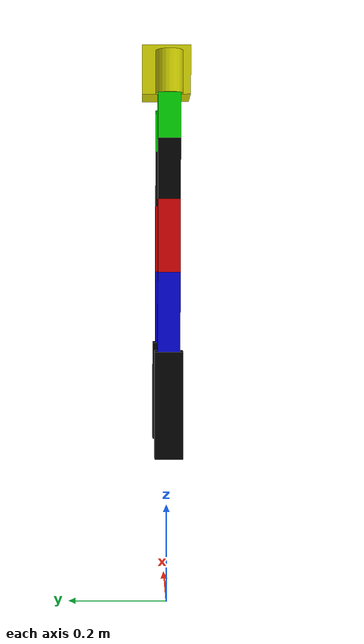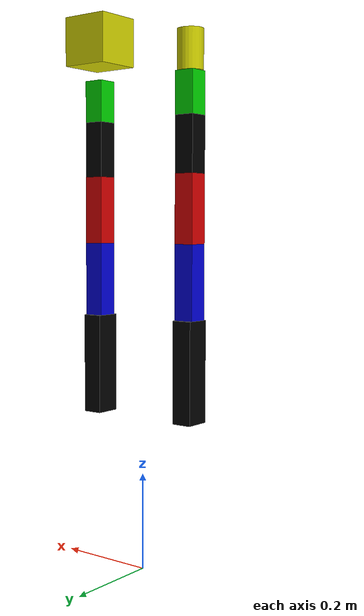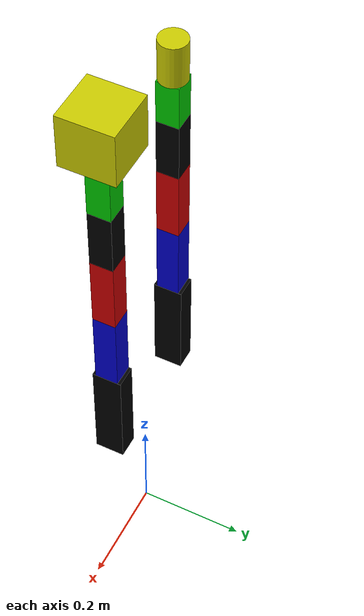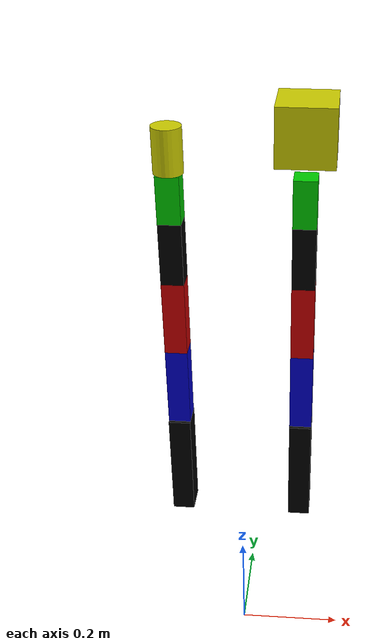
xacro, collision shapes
<?xml version="1.0"?>
<robot name="arm" xmlns:xacro="http://ros.org/wiki/xacro">

<xacro:property name="namespace" value="$(arg namespace)" />

<xacro:include filename="$(find rotors_description)/urdf/component_snippets.xacro" />

<xacro:arm_actuator_plugin_macro namespace="${namespace}"/>

<material name="blue">
    <color rgba="0 0 0.8 1"/>
</material>

<material name="green">
    <color rgba="0 0.8 0 1"/>
</material>

<material name="yellow">
    <color rgba="0.8 0.8 0 1"/>
</material>

<material name="black">
    <color rgba="0 0 0 1"/>
</material>

<material name="red">
    <color rgba="0.8 0 0 1"/>
</material>

<link name="world">
	<origin rpy="0 0 0" xyz="0 0 0"/>
</link>

<joint name="fixed_joint" type="fixed">
	<parent link="world"/>
	<child link="fixed_frame"/>
	<origin rpy="0 3.1416 0" xyz="0 0 1.1"/>
</joint>

<link name="fixed_frame">
	<origin rpy="0 0 0" xyz="0 0 0"/>
</link>

<joint name="fixed_joint_right" type="fixed">
	<parent link="fixed_frame"/>
	<child link="base_link_right"/>
	<origin rpy="0 0 0" xyz="0.11475 0 0.009"/>
</joint>

<link name="base_link_right">
	<visual>
		<origin rpy="0 0 0" xyz="0 0 0"/>
		<geometry>
		<mesh filename="package://rotors_description/meshes/arm/base_link.stl" scale="0.001 0.001 0.001"/>
		</geometry>
		<material name = "yellow"/>
	</visual>

    <collision>
      <origin xyz="0 0 39.875e-3" rpy="0 0 0"/>
      <geometry>
        <cylinder radius="26.05e-3" length="79.75e-3"/>
      </geometry>
    </collision>

    <inertial>
      <origin xyz="-2.2068363e-3 -9.1832072e-6 3.1955704e-3" rpy="-0.1729 0 1.5708"/>
      <mass value="0.396"/>
      <inertia
        ixx="3.1455842e-4" ixy="0.0" ixz="0.0"
        iyy="8.1358422e-4" iyz="0.0"
        izz="9.0317049e-4"/>
    </inertial>
</link>

 <joint name="Joint_shoulder_right" type="revolute">
 	<axis xyz="0 0 1"/>
 	<limit effort="1000.0" lower="-3.14" upper="+3.14" velocity="1"/>
	<parent link="base_link_right"/>
	<child link="Link_shoulder_right"/>
	<origin xyz="0 0 79.75e-3"/>
</joint>

<link name="Link_shoulder_right">
	<visual>
		<origin rpy="0 0 0" xyz="0 0 0"/>
		<geometry>
		<mesh filename="package://rotors_description/meshes/arm/j0.stl" scale="0.001 0.001 0.001"/>
		</geometry>
		<material name = "green"/>
	</visual>

    <collision>
      <origin xyz="0 0 42.572e-3" rpy="0 0 0"/>
      <geometry>
        <box size="41e-3 42.5e-3 85.144e-3"/>
      </geometry>
    </collision>

    <inertial>
      <origin xyz="-3.0707866e-6 9.0724801e-5 3.3368422e-3" rpy="1.5790 -0.0021 1.7506"/>
      <mass value="1.586"/>
      <inertia
        ixx="9.7058009e-4" ixy="0.0" ixz="0.0"
        iyy="5.8598889e-3" iyz="0.0"
        izz="6.2755829e-3"/>
    </inertial>
</link>

<joint name="fake_J1_A_right" type="revolute">
	<axis xyz="1 0 0"/>
 	<limit effort="1000.0" lower="0" upper="0.785" velocity="1"/>
	<parent link="Link_shoulder_right"/>
	<child link="fake_link_J1_right"/>
	<origin xyz="0 0 61.144e-3"/>
</joint>

<link name="fake_link_J1_right">
<!-- for a box: ixx = 0.083 * mass * (y*y + z*z) -->
<!-- for a box: ixy = 0 -->
<!-- for a box: ixz = 0 -->
<!-- for a box: iyy = 0.083 * mass * (x*x + z*z) -->
<!-- for a box: iyz = 0 -->
<!-- for a box: izz = 0.083 * mass * (x*x + y*y) -->
    <inertial>
      <origin xyz="0 0 0.024" rpy="0 0 0"/>
      <mass value="0.001"/>
      <inertia
        ixx="2e-7" ixy="0.0" ixz="0.0"
        iyy="2e-7" iyz="0.0"
        izz="2e-7"/>
    </inertial>
</link>

 <joint name="fake_J1_B_right" type="revolute">
 	<axis xyz="1 0 0"/>
 	<limit effort="1000.0" lower="0" upper="0.785" velocity="1"/>
	<parent link="fake_link_J1_right"/>
	<child link="Link_one_right"/>
	<origin xyz="0 0 0.048"/>
</joint>

<link name="Link_one_right">
	<visual>
		<origin rpy="0 0 0" xyz="0 0.0 0"/>
		<geometry>
		<mesh filename="package://rotors_description/meshes/arm/j1.stl" scale="0.001 0.001 0.001"/>
		</geometry>
		<material name = "black"/>
	</visual>

    <collision>
      <origin xyz="0 0 32.5e-3" rpy="0 0 0"/>
      <geometry>
        <box size="41e-3 42.5e-3 113e-3"/>
      </geometry>
    </collision>

    <inertial>
      <origin xyz="3.9623762e-4 5.2904518e-4 3.2046387e-2" rpy="-0.0193 -1.4555 -1.4511"/>
      <mass value="0.139"/>
      <inertia
        ixx="5.7544276e-5" ixy="0.0" ixz="0.0"
        iyy="1.7117076e-4" iyz="0.0"
        izz="1.7370141e-4"/>
    </inertial>
</link>

<joint name="fake_J2_A_right" type="revolute">
	<axis xyz="1 0 0"/>
 	<limit effort="1000.0" lower="-0.785" upper="0" velocity="1"/>
	<parent link="Link_one_right"/>
	<child link="fake_link_J2_right"/>
	<origin xyz="0 0 0.065"/>
</joint>

<link name="fake_link_J2_right">
    <inertial>
      <origin xyz="0 0 0.024" rpy="0 0 0"/>
      <mass value="0.001"/>
      <inertia
        ixx="2e-7" ixy="0.0" ixz="0.0"
        iyy="2e-7" iyz="0.0"
        izz="2e-7"/>
    </inertial>
</link>

<joint name="fake_J2_B_right" type="revolute">
	<axis xyz="1 0 0"/>
 	<limit effort="1000.0" lower="-0.785" upper="0" velocity="1"/>
	<parent link="fake_link_J2_right"/>
	<child link="Link_two_right"/>
	<origin xyz="0 0 0.048"/>
</joint>

<link name="Link_two_right">
	<visual>
		<origin rpy="0 0 0" xyz="0 0 0"/>
		<geometry>
		<mesh filename="package://rotors_description/meshes/arm/j2.stl" scale="0.001 0.001 0.001"/>
		</geometry>
		<material name = "red"/>
	</visual>

    <collision>
      <origin xyz="0 0 45e-3" rpy="0 0 0"/>
      <geometry>
        <box size="41e-3 42.5e-3 138e-3"/>
      </geometry>
    </collision>

    <inertial>
      <origin xyz="5.1358654e-4 1.4848633e-3 4.0707125e-2" rpy="3.0686 -1.5089 1.6549"/>
      <mass value="0.154"/>
      <inertia
        ixx="9.2363919e-5" ixy="0.0" ixz="0.0"
        iyy="2.7365867e-4" iyz="0.0"
        izz="2.7990892e-4"/>
    </inertial>
</link>

<joint name="fake_J3_A_right" type="revolute">
	<axis xyz="1 0 0"/>
 	<limit effort="1000.0" lower="0" upper="0.785" velocity="1"/>
	<parent link="Link_two_right"/>
	<child link="fake_link_J3_right"/>
	<origin xyz="0 0 0.090"/>
</joint>

<link name="fake_link_J3_right">
	<inertial>
      <origin xyz="0 0 0.024" rpy="0 0 0"/>
      <mass value="0.001"/>
      <inertia
        ixx="2e-7" ixy="0.0" ixz="0.0"
        iyy="2e-7" iyz="0.0"
        izz="2e-7"/>
    </inertial>
</link>

<joint name="fake_J3_B_right" type="revolute">
	<axis xyz="1 0 0"/>
 	<limit effort="1000.0" lower="0" upper="0.785" velocity="1"/>
	<parent link="fake_link_J3_right"/>
	<child link="Link_three_right"/>
	<origin xyz="0 0 0.048"/>
</joint>

<link name="Link_three_right">
	<visual>
		<origin rpy="0 0 0" xyz="0 0 0"/>
		<geometry>
		<mesh filename="package://rotors_description/meshes/arm/j3.stl" scale="0.001 0.001 0.001"/>
		</geometry>
		<material name = "blue"/>
	</visual>

    <collision>
      <origin xyz="0 0 51.1e-3" rpy="0 0 0"/>
      <geometry>
        <box size="41e-3 42.5e-3 150.2e-3"/>
      </geometry>
    </collision>

    <inertial>
      <origin xyz="1.0689991e-4 4.5539723e-3 5.6348105e-2" rpy="0.0503 -1.4936 -1.6299"/>
      <mass value="0.207"/>
      <inertia
        ixx="8.4188171e-5" ixy="0.0" ixz="0.0"
        iyy="3.4408597e-4" iyz="0.0"
        izz="3.6490830e-4"/>
    </inertial>
</link>

<joint name="Joint_wrist_right" type="revolute">
	<axis xyz="0 0 1"/>
 	<limit effort="1000.0" lower="-3.14" upper="3.14" velocity="1"/>
	<parent link="Link_three_right"/>
	<child link="Link_hand_right"/>
	<origin xyz="0 0 0.1262"/>
</joint>

<link name="Link_hand_right">
	<visual>
		<origin rpy="0 0 0 " xyz="0 0 0"/>
		<geometry>
    <mesh filename="package://rotors_description/meshes/arm/hand_right.stl" scale="0.001 0.001 0.001"/>
    </geometry>
		<material name = "black"/>
	</visual>

    <collision>
      <origin xyz="0 0 102.556e-3" rpy="0 0 0"/>
      <geometry>
        <box size="41e-3 54e-3 205.122e-3"/>
      </geometry>
    </collision>

    <inertial>
      <origin xyz="-5.1914952e-3 9.4338844e-4 8.4791871e-2" rpy="2.7807 -1.4896 1.8174"/>
      <mass value="0.505"/>
      <inertia
        ixx="3.2734333e-4" ixy="0.0" ixz="0.0"
        iyy="1.1324016e-3" iyz="0.0"
        izz="1.3591446e-3"/>
    </inertial>
</link>

<joint name="fixed_joint_left" type="fixed">
	<parent link="fixed_frame"/>
	<child link="base_link_left"/>
	<origin rpy="0 0 0" xyz="-0.11475 0 0.009"/>
</joint>

<link name="base_link_left">
	<visual>
		<origin rpy="0 0 0" xyz="0 0 0"/>
		<geometry>
		<mesh filename="package://rotors_description/meshes/arm/base_link.stl" scale="0.001 0.001 0.001"/>
		</geometry>
		<material name = "yellow"/>
	</visual>

    <collision>
      <origin xyz="0 0 0" rpy="0 0 0"/>
      <geometry>
        <box size="0.1 0.1 0.1"/>
      </geometry>
    </collision>

    <inertial>
      <origin xyz="-2.2068363e-3 -9.1832072e-6 3.1955704e-3" rpy="-0.1729 0 1.5708"/>
      <mass value="0.396"/>
      <inertia
        ixx="3.1455842e-4" ixy="0.0" ixz="0.0"
        iyy="8.1358422e-4" iyz="0.0"
        izz="9.0317049e-4"/>
    </inertial>
</link>

 <joint name="Joint_shoulder_left" type="revolute">
 	<axis xyz="0 0 1"/>
 	<limit effort="1000.0" lower="-3.14" upper="+3.14" velocity="1"/>
	<parent link="base_link_left"/>
	<child link="Link_shoulder_left"/>
	<origin xyz="0 0 79.75e-3"/>
</joint>

<link name="Link_shoulder_left">
	<visual>
		<origin rpy="0 0 0" xyz="0 0 0"/>
		<geometry>
		<mesh filename="package://rotors_description/meshes/arm/j0.stl" scale="0.001 0.001 0.001"/>
		</geometry>
		<material name = "green"/>
	</visual>

    <collision>
      <origin xyz="0 0 42.572e-3" rpy="0 0 0"/>
      <geometry>
        <box size="41e-3 42.5e-3 85.144e-3"/>
      </geometry>
    </collision>

    <inertial>
      <origin xyz="-3.0707866e-6 9.0724801e-5 3.3368422e-3" rpy="1.5790 -0.0021 1.7506"/>
      <mass value="1.586"/>
      <inertia
        ixx="9.7058009e-4" ixy="0.0" ixz="0.0"
        iyy="5.8598889e-3" iyz="0.0"
        izz="6.2755829e-3"/>
    </inertial>
</link>

<joint name="fake_J1_A_left" type="revolute">
	<axis xyz="1 0 0"/>
 	<limit effort="1000.0" lower="0" upper="0.785" velocity="1"/>
	<parent link="Link_shoulder_left"/>
	<child link="fake_link_J1_left"/>
	<origin xyz="0 0 61.144e-3"/>
</joint>

<link name="fake_link_J1_left">
<!-- for a box: ixx = 0.083 * mass * (y*y + z*z) -->
<!-- for a box: ixy = 0 -->
<!-- for a box: ixz = 0 -->
<!-- for a box: iyy = 0.083 * mass * (x*x + z*z) -->
<!-- for a box: iyz = 0 -->
<!-- for a box: izz = 0.083 * mass * (x*x + y*y) -->
    <inertial>
      <origin xyz="0 0 0.024" rpy="0 0 0"/>
      <mass value="0.001"/>
      <inertia
        ixx="2e-7" ixy="0.0" ixz="0.0"
        iyy="2e-7" iyz="0.0"
        izz="2e-7"/>
    </inertial>
</link>

 <joint name="fake_J1_B_left" type="revolute">
 	<axis xyz="1 0 0"/>
 	<limit effort="1000.0" lower="0" upper="0.785" velocity="1"/>
	<parent link="fake_link_J1_left"/>
	<child link="Link_one_left"/>
	<origin xyz="0 0 0.048"/>
</joint>

<link name="Link_one_left">
	<visual>
		<origin rpy="0 0 0" xyz="0 0 0"/>
		<geometry>
		<mesh filename="package://rotors_description/meshes/arm/j1.stl" scale="0.001 0.001 0.001"/>
		</geometry>
		<material name = "black"/>
	</visual>

    <collision>
      <origin xyz="0 0 32.5e-3" rpy="0 0 0"/>
      <geometry>
        <box size="41e-3 42.5e-3 113e-3"/>
      </geometry>
    </collision>

    <inertial>
      <origin xyz="3.9623762e-4 5.2904518e-4 3.2046387e-2" rpy="-0.0193 -1.4555 -1.4511"/>
      <mass value="0.139"/>
      <inertia
        ixx="5.7544276e-5" ixy="0.0" ixz="0.0"
        iyy="1.7117076e-4" iyz="0.0"
        izz="1.7370141e-4"/>
    </inertial>
</link>

<joint name="fake_J2_A_left" type="revolute">
	<axis xyz="1 0 0"/>
 	<limit effort="1000.0" lower="-0.785" upper="0" velocity="1"/>
	<parent link="Link_one_left"/>
	<child link="fake_link_J2_left"/>
	<origin xyz="0 0 0.065"/>
</joint>

<link name="fake_link_J2_left">
	    <inertial>
      <origin xyz="0 0 0.024" rpy="0 0 0"/>
      <mass value="0.001"/>
      <inertia
        ixx="2e-7" ixy="0.0" ixz="0.0"
        iyy="2e-7" iyz="0.0"
        izz="2e-7"/>
    </inertial>
</link>

<joint name="fake_J2_B_left" type="revolute">
	<axis xyz="1 0 0"/>
 	<limit effort="1000.0" lower="-0.785" upper="0" velocity="1"/>
	<parent link="fake_link_J2_left"/>
	<child link="Link_two_left"/>
	<origin xyz="0 0 0.048"/>
</joint>

<link name="Link_two_left">
	<visual>
		<origin rpy="0 0 0" xyz="0 0 0"/>
		<geometry>
		<mesh filename="package://rotors_description/meshes/arm/j2.stl" scale="0.001 0.001 0.001"/>
		</geometry>
		<material name = "red"/>
	</visual>

    <collision>
      <origin xyz="0 0 45e-3" rpy="0 0 0"/>
      <geometry>
        <box size="41e-3 42.5e-3 138e-3"/>
      </geometry>
    </collision>

    <inertial>
      <origin xyz="5.1358654e-4 1.4848633e-3 4.0707125e-2" rpy="3.0686 -1.5089 1.6549"/>
      <mass value="0.154"/>
      <inertia
        ixx="9.2363919e-5" ixy="0.0" ixz="0.0"
        iyy="2.7365867e-4" iyz="0.0"
        izz="2.7990892e-4"/>
    </inertial>
</link>

<joint name="fake_J3_A_left" type="revolute">
	<axis xyz="1 0 0"/>
 	<limit effort="1000.0" lower="0" upper="0.785" velocity="1"/>
	<parent link="Link_two_left"/>
	<child link="fake_link_J3_left"/>
	<origin xyz="0 0 0.090"/>
</joint>

<link name="fake_link_J3_left">
	<inertial>
      <origin xyz="0 0 0.024" rpy="0 0 0"/>
      <mass value="0.001"/>
      <inertia
        ixx="2e-7" ixy="0.0" ixz="0.0"
        iyy="2e-7" iyz="0.0"
        izz="2e-7"/>
    </inertial>
</link>

<joint name="fake_J3_B_left" type="revolute">
	<axis xyz="1 0 0"/>
 	<limit effort="1000.0" lower="0" upper="0.785" velocity="1"/>
	<parent link="fake_link_J3_left"/>
	<child link="Link_three_left"/>
	<origin xyz="0 0 0.048"/>
</joint>

<link name="Link_three_left">
	<visual>
		<origin rpy="0 0 0" xyz="0 0 0"/>
		<geometry>
		<mesh filename="package://rotors_description/meshes/arm/j3.stl" scale="0.001 0.001 0.001"/>
		</geometry>
		<material name = "blue"/>
	</visual>

    <collision>
      <origin xyz="0 0 51.1e-3" rpy="0 0 0"/>
      <geometry>
        <box size="41e-3 42.5e-3 150.2e-3"/>
      </geometry>
    </collision>

    <inertial>
      <origin xyz="1.0689991e-4 4.5539723e-3 5.6348105e-2" rpy="0.0503 -1.4936 -1.6299"/>
      <mass value="0.207"/>
      <inertia
        ixx="8.4188171e-5" ixy="0.0" ixz="0.0"
        iyy="3.4408597e-4" iyz="0.0"
        izz="3.6490830e-4"/>
    </inertial>
</link>

<joint name="Joint_wrist_left" type="revolute">
	<axis xyz="0 0 1"/>
 	<limit effort="1000.0" lower="-3.14" upper="3.14" velocity="1"/>
	<parent link="Link_three_left"/>
	<child link="Link_hand_left"/>
	<origin xyz="0 0 0.1262"/>
</joint>

<link name="Link_hand_left">
	<visual>
		<origin rpy="0 0 0 " xyz="0 0 0"/>
		<geometry>
    <mesh filename="package://rotors_description/meshes/arm/hand_left.stl" scale="0.001 0.001 0.001"/>
    </geometry>
		<material name = "black"/>
	</visual>

    <collision>
      <origin xyz="0 0 102.556e-3" rpy="0 0 0"/>
      <geometry>
        <box size="41e-3 54e-3 205.122e-3"/>
      </geometry>
    </collision>

    <inertial>
      <origin xyz="-5.1914952e-3 9.4338844e-4 8.4791871e-2" rpy="2.7807 -1.4896 1.8174"/>
      <mass value="0.505"/>
      <inertia
        ixx="3.2734333e-4" ixy="0.0" ixz="0.0"
        iyy="1.1324016e-3" iyz="0.0"
        izz="1.3591446e-3"/>
    </inertial>
</link>

</robot>
